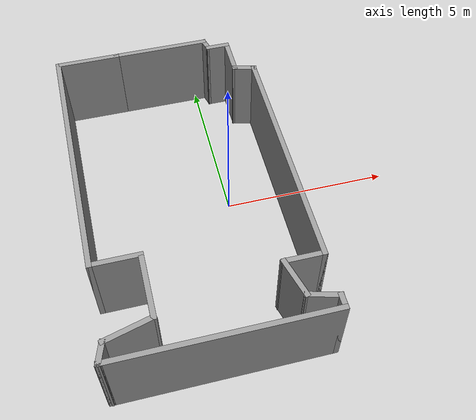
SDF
<?xml version='1.0'?>
<sdf version='1.6'>
  <model name='roo'>
    <pose frame=''>-1.41451 -0.260192 0 0 -0 0</pose>
    <link name='Wall_0'>
      <collision name='Wall_0_Collision'>
        <geometry>
          <box>
            <size>6.25 0.15 2.5</size>
          </box>
        </geometry>
        <pose frame=''>0 0 1.25 0 -0 0</pose>
      </collision>
      <visual name='Wall_0_Visual'>
        <pose frame=''>0 0 1.25 0 -0 0</pose>
        <geometry>
          <box>
            <size>6.25 0.15 2.5</size>
          </box>
        </geometry>
        <material>
          <script>
            <uri>file://media/materials/scripts/gazebo.material</uri>
            <name>Gazebo/Grey</name>
          </script>
          <ambient>1 1 1 1</ambient>
        </material>
        <meta>
          <layer>0</layer>
        </meta>
      </visual>
      <pose frame=''>0.001286 -5.16165 0 0 -0 0</pose>
    </link>
    <link name='Wall_1'>
      <collision name='Wall_1_Collision'>
        <geometry>
          <box>
            <size>0.5 0.15 2.5</size>
          </box>
        </geometry>
        <pose frame=''>0 0 1.25 0 -0 0</pose>
      </collision>
      <visual name='Wall_1_Visual'>
        <pose frame=''>0 0 1.25 0 -0 0</pose>
        <geometry>
          <box>
            <size>0.5 0.15 2.5</size>
          </box>
        </geometry>
        <material>
          <script>
            <uri>file://media/materials/scripts/gazebo.material</uri>
            <name>Gazebo/Grey</name>
          </script>
          <ambient>1 1 1 1</ambient>
        </material>
        <meta>
          <layer>0</layer>
        </meta>
      </visual>
      <pose frame=''>3.05129 -4.98665 0 0 -0 1.5708</pose>
    </link>
    <link name='Wall_10'>
      <collision name='Wall_10_Collision'>
        <geometry>
          <box>
            <size>3 0.15 2.5</size>
          </box>
        </geometry>
        <pose frame=''>0 0 1.25 0 -0 0</pose>
      </collision>
      <visual name='Wall_10_Visual'>
        <pose frame=''>0 0 1.25 0 -0 0</pose>
        <geometry>
          <box>
            <size>3 0.15 2.5</size>
          </box>
        </geometry>
        <material>
          <script>
            <uri>file://media/materials/scripts/gazebo.material</uri>
            <name>Gazebo/Grey</name>
          </script>
          <ambient>1 1 1 1</ambient>
        </material>
        <meta>
          <layer>0</layer>
        </meta>
      </visual>
      <pose frame=''>0.350406 5.16423 0 0 -0 3.14159</pose>
    </link>
    <link name='Wall_11'>
      <collision name='Wall_11_Collision'>
        <geometry>
          <box>
            <size>0.15 0.15 2.5</size>
          </box>
        </geometry>
        <pose frame=''>0 0 1.25 0 -0 0</pose>
      </collision>
      <visual name='Wall_11_Visual'>
        <pose frame=''>0 0 1.25 0 -0 0</pose>
        <geometry>
          <box>
            <size>0.15 0.15 2.5</size>
          </box>
        </geometry>
        <material>
          <script>
            <uri>file://media/materials/scripts/gazebo.material</uri>
            <name>Gazebo/Grey</name>
          </script>
          <ambient>1 1 1 1</ambient>
        </material>
        <meta>
          <layer>0</layer>
        </meta>
      </visual>
      <pose frame=''>-1.07459 5.16423 0 0 -0 0</pose>
    </link>
    <link name='Wall_12'>
      <collision name='Wall_12_Collision'>
        <geometry>
          <box>
            <size>2 0.15 2.5</size>
          </box>
        </geometry>
        <pose frame=''>0 0 1.25 0 -0 0</pose>
      </collision>
      <visual name='Wall_12_Visual'>
        <pose frame=''>0 0 1.25 0 -0 0</pose>
        <geometry>
          <box>
            <size>2 0.15 2.5</size>
          </box>
        </geometry>
        <material>
          <script>
            <uri>file://media/materials/scripts/gazebo.material</uri>
            <name>Gazebo/Grey</name>
          </script>
          <ambient>1 1 1 1</ambient>
        </material>
        <meta>
          <layer>0</layer>
        </meta>
      </visual>
      <pose frame=''>-1.99959 5.16423 0 0 -0 3.14159</pose>
    </link>
    <link name='Wall_13'>
      <collision name='Wall_13_Collision'>
        <geometry>
          <box>
            <size>7.75 0.15 2.5</size>
          </box>
        </geometry>
        <pose frame=''>0 0 1.25 0 -0 0</pose>
      </collision>
      <visual name='Wall_13_Visual'>
        <pose frame=''>0 0 1.25 0 -0 0</pose>
        <geometry>
          <box>
            <size>7.75 0.15 2.5</size>
          </box>
        </geometry>
        <material>
          <script>
            <uri>file://media/materials/scripts/gazebo.material</uri>
            <name>Gazebo/Grey</name>
          </script>
          <ambient>1 1 1 1</ambient>
        </material>
        <meta>
          <layer>0</layer>
        </meta>
      </visual>
      <pose frame=''>-2.92459 1.36423 0 0 -0 -1.5708</pose>
    </link>
    <link name='Wall_14'>
      <collision name='Wall_14_Collision'>
        <geometry>
          <box>
            <size>1.5 0.15 2.5</size>
          </box>
        </geometry>
        <pose frame=''>0 0 1.25 0 -0 0</pose>
      </collision>
      <visual name='Wall_14_Visual'>
        <pose frame=''>0 0 1.25 0 -0 0</pose>
        <geometry>
          <box>
            <size>1.5 0.15 2.5</size>
          </box>
        </geometry>
        <material>
          <script>
            <uri>file://media/materials/scripts/gazebo.material</uri>
            <name>Gazebo/Grey</name>
          </script>
          <ambient>1 1 1 1</ambient>
        </material>
        <meta>
          <layer>0</layer>
        </meta>
      </visual>
      <pose frame=''>-2.24959 -2.43577 0 0 -0 0</pose>
    </link>
    <link name='Wall_15'>
      <collision name='Wall_15_Collision'>
        <geometry>
          <box>
            <size>2 0.15 2.5</size>
          </box>
        </geometry>
        <pose frame=''>0 0 1.25 0 -0 0</pose>
      </collision>
      <visual name='Wall_15_Visual'>
        <pose frame=''>0 0 1.25 0 -0 0</pose>
        <geometry>
          <box>
            <size>2 0.15 2.5</size>
          </box>
        </geometry>
        <material>
          <script>
            <uri>file://media/materials/scripts/gazebo.material</uri>
            <name>Gazebo/Grey</name>
          </script>
          <ambient>1 1 1 1</ambient>
        </material>
        <meta>
          <layer>0</layer>
        </meta>
      </visual>
      <pose frame=''>-1.57459 -3.36077 0 0 -0 -1.5708</pose>
    </link>
    <link name='Wall_16'>
      <collision name='Wall_16_Collision'>
        <geometry>
          <box>
            <size>1.5 0.15 2.5</size>
          </box>
        </geometry>
        <pose frame=''>0 0 1.25 0 -0 0</pose>
      </collision>
      <visual name='Wall_16_Visual'>
        <pose frame=''>0 0 1.25 0 -0 0</pose>
        <geometry>
          <box>
            <size>1.5 0.15 2.5</size>
          </box>
        </geometry>
        <material>
          <script>
            <uri>file://media/materials/scripts/gazebo.material</uri>
            <name>Gazebo/Grey</name>
          </script>
          <ambient>1 1 1 1</ambient>
        </material>
        <meta>
          <layer>0</layer>
        </meta>
      </visual>
      <pose frame=''>-2.22659 -4.46048 0 0 -0 -2.87979</pose>
    </link>
    <link name='Wall_17'>
      <collision name='Wall_17_Collision'>
        <geometry>
          <box>
            <size>0.703278 0.15 2.5</size>
          </box>
        </geometry>
        <pose frame=''>0 0 1.25 0 -0 0</pose>
      </collision>
      <visual name='Wall_17_Visual'>
        <pose frame=''>0 0 1.25 0 -0 0</pose>
        <geometry>
          <box>
            <size>0.703278 0.15 2.5</size>
          </box>
        </geometry>
        <material>
          <script>
            <uri>file://media/materials/scripts/gazebo.material</uri>
            <name>Gazebo/Grey</name>
          </script>
          <ambient>1 1 1 1</ambient>
        </material>
        <meta>
          <layer>0</layer>
        </meta>
      </visual>
      <pose frame=''>-2.96365 -4.89842 0 0 -0 -1.88334</pose>
    </link>
    <link name='Wall_18'>
      <collision name='Wall_18_Collision'>
        <geometry>
          <box>
            <size>0.16 0.15 2.5</size>
          </box>
        </geometry>
        <pose frame=''>0 0 1.25 0 -0 0</pose>
      </collision>
      <visual name='Wall_18_Visual'>
        <pose frame=''>0 0 1.25 0 -0 0</pose>
        <geometry>
          <box>
            <size>0.16 0.15 2.5</size>
          </box>
        </geometry>
        <material>
          <script>
            <uri>file://media/materials/scripts/gazebo.material</uri>
            <name>Gazebo/Grey</name>
          </script>
          <ambient>1 1 1 1</ambient>
        </material>
        <meta>
          <layer>0</layer>
        </meta>
      </visual>
      <pose frame=''>-3.04371 -5.16165 0 0 -0 0</pose>
    </link>
    <link name='Wall_19'>
      <collision name='Wall_19_Collision'>
        <geometry>
          <box>
            <size>0.16 0.15 2.5</size>
          </box>
        </geometry>
        <pose frame=''>0 0 1.25 0 -0 0</pose>
      </collision>
      <visual name='Wall_19_Visual'>
        <pose frame=''>0 0 1.25 0 -0 0</pose>
        <geometry>
          <box>
            <size>0.16 0.15 2.5</size>
          </box>
        </geometry>
        <material>
          <script>
            <uri>file://media/materials/scripts/gazebo.material</uri>
            <name>Gazebo/Grey</name>
          </script>
          <ambient>0 0 0 1</ambient>
        </material>
        <meta>
          <layer>0</layer>
        </meta>
      </visual>
      <pose frame=''>-3.04371 -5.16165 0 0 -0 3.14159</pose>
    </link>
    <link name='Wall_2'>
      <collision name='Wall_2_Collision'>
        <geometry>
          <box>
            <size>1 0.15 2.5</size>
          </box>
        </geometry>
        <pose frame=''>0 0 1.25 0 -0 0</pose>
      </collision>
      <visual name='Wall_2_Visual'>
        <pose frame=''>0 0 1.25 0 -0 0</pose>
        <geometry>
          <box>
            <size>1 0.15 2.5</size>
          </box>
        </geometry>
        <material>
          <script>
            <uri>file://media/materials/scripts/gazebo.material</uri>
            <name>Gazebo/Grey</name>
          </script>
          <ambient>1 1 1 1</ambient>
        </material>
        <meta>
          <layer>0</layer>
        </meta>
      </visual>
      <pose frame=''>2.64077 -4.70166 0 0 -0 2.87979</pose>
    </link>
    <link name='Wall_3'>
      <collision name='Wall_3_Collision'>
        <geometry>
          <box>
            <size>1.25 0.15 2.5</size>
          </box>
        </geometry>
        <pose frame=''>0 0 1.25 0 -0 0</pose>
      </collision>
      <visual name='Wall_3_Visual'>
        <pose frame=''>0 0 1.25 0 -0 0</pose>
        <geometry>
          <box>
            <size>1.25 0.15 2.5</size>
          </box>
        </geometry>
        <material>
          <script>
            <uri>file://media/materials/scripts/gazebo.material</uri>
            <name>Gazebo/Grey</name>
          </script>
          <ambient>1 1 1 1</ambient>
        </material>
        <meta>
          <layer>0</layer>
        </meta>
      </visual>
      <pose frame=''>2.0879 -4.0604 0 0 -0 1.8326</pose>
    </link>
    <link name='Wall_4'>
      <collision name='Wall_4_Collision'>
        <geometry>
          <box>
            <size>1.25 0.15 2.5</size>
          </box>
        </geometry>
        <pose frame=''>0 0 1.25 0 -0 0</pose>
      </collision>
      <visual name='Wall_4_Visual'>
        <pose frame=''>0 0 1.25 0 -0 0</pose>
        <geometry>
          <box>
            <size>1.25 0.15 2.5</size>
          </box>
        </geometry>
        <material>
          <script>
            <uri>file://media/materials/scripts/gazebo.material</uri>
            <name>Gazebo/Grey</name>
          </script>
          <ambient>1 1 1 1</ambient>
        </material>
        <meta>
          <layer>0</layer>
        </meta>
      </visual>
      <pose frame=''>2.49555 -3.52914 0 0 -0 0</pose>
    </link>
    <link name='Wall_5'>
      <collision name='Wall_5_Collision'>
        <geometry>
          <box>
            <size>7.25 0.15 2.5</size>
          </box>
        </geometry>
        <pose frame=''>0 0 1.25 0 -0 0</pose>
      </collision>
      <visual name='Wall_5_Visual'>
        <pose frame=''>0 0 1.25 0 -0 0</pose>
        <geometry>
          <box>
            <size>7.25 0.15 2.5</size>
          </box>
        </geometry>
        <material>
          <script>
            <uri>file://media/materials/scripts/gazebo.material</uri>
            <name>Gazebo/Grey</name>
          </script>
          <ambient>1 1 1 1</ambient>
        </material>
        <meta>
          <layer>0</layer>
        </meta>
      </visual>
      <pose frame=''>3.04555 0.02086 0 0 -0 1.5708</pose>
    </link>
    <link name='Wall_6'>
      <collision name='Wall_6_Collision'>
        <geometry>
          <box>
            <size>0.75 0.15 2.5</size>
          </box>
        </geometry>
        <pose frame=''>0 0 1.25 0 -0 0</pose>
      </collision>
      <visual name='Wall_6_Visual'>
        <pose frame=''>0 0 1.25 0 -0 0</pose>
        <geometry>
          <box>
            <size>0.75 0.15 2.5</size>
          </box>
        </geometry>
        <material>
          <script>
            <uri>file://media/materials/scripts/gazebo.material</uri>
            <name>Gazebo/Grey</name>
          </script>
          <ambient>1 1 1 1</ambient>
        </material>
        <meta>
          <layer>0</layer>
        </meta>
      </visual>
      <pose frame=''>2.75577 3.64851 0 0 -0 2.87979</pose>
    </link>
    <link name='Wall_7'>
      <collision name='Wall_7_Collision'>
        <geometry>
          <box>
            <size>1.25 0.15 2.5</size>
          </box>
        </geometry>
        <pose frame=''>0 0 1.25 0 -0 0</pose>
      </collision>
      <visual name='Wall_7_Visual'>
        <pose frame=''>0 0 1.25 0 -0 0</pose>
        <geometry>
          <box>
            <size>1.25 0.15 2.5</size>
          </box>
        </geometry>
        <material>
          <script>
            <uri>file://media/materials/scripts/gazebo.material</uri>
            <name>Gazebo/Grey</name>
          </script>
          <ambient>1 1 1 1</ambient>
        </material>
        <meta>
          <layer>0</layer>
        </meta>
      </visual>
      <pose frame=''>2.46599 4.27615 0 0 -0 1.5708</pose>
    </link>
    <link name='Wall_8'>
      <collision name='Wall_8_Collision'>
        <geometry>
          <box>
            <size>0.75 0.15 2.5</size>
          </box>
        </geometry>
        <pose frame=''>0 0 1.25 0 -0 0</pose>
      </collision>
      <visual name='Wall_8_Visual'>
        <pose frame=''>0 0 1.25 0 -0 0</pose>
        <geometry>
          <box>
            <size>0.75 0.15 2.5</size>
          </box>
        </geometry>
        <material>
          <script>
            <uri>file://media/materials/scripts/gazebo.material</uri>
            <name>Gazebo/Grey</name>
          </script>
          <ambient>1 1 1 1</ambient>
        </material>
        <meta>
          <layer>0</layer>
        </meta>
      </visual>
      <pose frame=''>2.16599 4.82615 0 0 -0 3.14159</pose>
    </link>
    <link name='Wall_9'>
      <collision name='Wall_9_Collision'>
        <geometry>
          <box>
            <size>0.5 0.15 2.5</size>
          </box>
        </geometry>
        <pose frame=''>0 0 1.25 0 -0 0</pose>
      </collision>
      <visual name='Wall_9_Visual'>
        <pose frame=''>0 0 1.25 0 -0 0</pose>
        <geometry>
          <box>
            <size>0.5 0.15 2.5</size>
          </box>
        </geometry>
        <material>
          <script>
            <uri>file://media/materials/scripts/gazebo.material</uri>
            <name>Gazebo/Grey</name>
          </script>
          <ambient>1 1 1 1</ambient>
        </material>
        <meta>
          <layer>0</layer>
        </meta>
      </visual>
      <pose frame=''>1.8207 4.99519 0 0 -0 1.8326</pose>
    </link>
    <static>1</static>
  </model>
</sdf>
